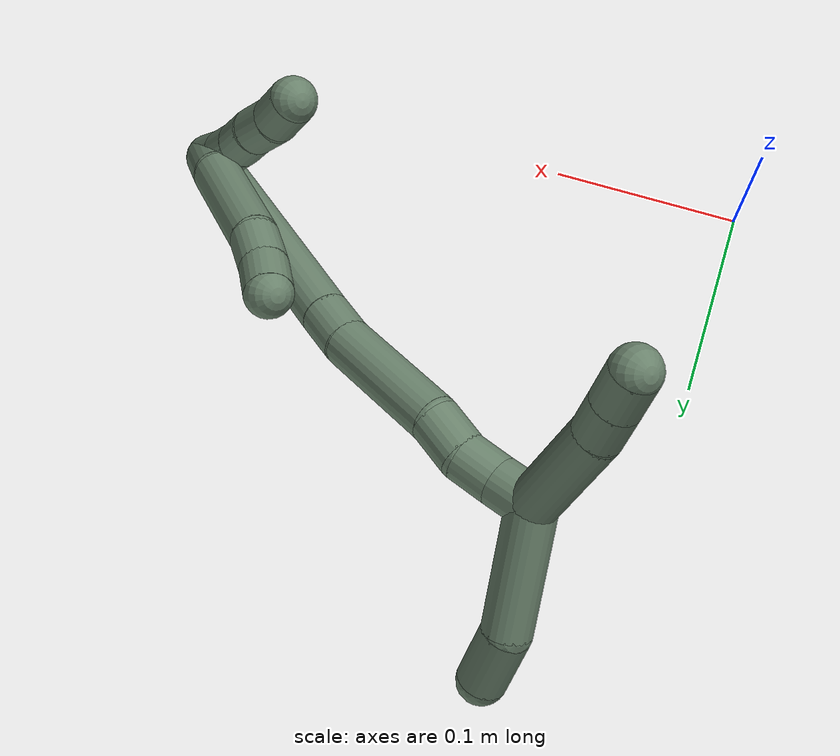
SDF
<sdf version="1.7">
 <world name="default">
  <model name="17">
   <static>0</static>
   <link name="17">
    <collision name="collision-cylinder-e_1_2_8">
     <pose>0.001035 0.005543 0.016873 -0.317396 0.058223 -0.009321</pose>
     <geometry><cylinder><radius>0.0125</radius><length>0.03558</length></cylinder></geometry>
     <surface>
      <friction><ode><mu>1.16</mu><mu2>1.16</mu2><slip1>0</slip1><slip2>0</slip2></ode></friction>
      <contact><ode><kp>1e+06</kp><kd>1</kd><max_vel>0</max_vel><min_depth>0.001</min_depth></ode></contact>
     </surface>
    </collision>
    <visual name="visual-cylinder-e_1_2_8">
     <pose>0.001035 0.005543 0.016873 -0.317396 0.058223 -0.009321</pose>
     <geometry><cylinder><radius>0.0125</radius><length>0.03558</length></cylinder></geometry>
     <material><ambient>0.415686 0.509804 0.423529 1</ambient></material>
    </visual>
    <collision name="collision-cylinder-e_2_8_9">
     <pose>-0.004529 0.023792 0.066197 -0.373195 -0.187163 0.035435</pose>
     <geometry><cylinder><radius>0.0125</radius><length>0.070939</length></cylinder></geometry>
     <surface>
      <friction><ode><mu>1.16</mu><mu2>1.16</mu2><slip1>0</slip1><slip2>0</slip2></ode></friction>
      <contact><ode><kp>1e+06</kp><kd>1</kd><max_vel>0</max_vel><min_depth>0.001</min_depth></ode></contact>
     </surface>
    </collision>
    <visual name="visual-cylinder-e_2_8_9">
     <pose>-0.004529 0.023792 0.066197 -0.373195 -0.187163 0.035435</pose>
     <geometry><cylinder><radius>0.0125</radius><length>0.070939</length></cylinder></geometry>
     <material><ambient>0.415686 0.509804 0.423529 1</ambient></material>
    </visual>
    <collision name="collision-cylinder-e_3_9_10">
     <pose>-0.01416 0.042232 0.107741 -0.562617 -0.27481 0.079874</pose>
     <geometry><cylinder><radius>0.0125</radius><length>0.022338</length></cylinder></geometry>
     <surface>
      <friction><ode><mu>1.16</mu><mu2>1.16</mu2><slip1>0</slip1><slip2>0</slip2></ode></friction>
      <contact><ode><kp>1e+06</kp><kd>1</kd><max_vel>0</max_vel><min_depth>0.001</min_depth></ode></contact>
     </surface>
    </collision>
    <visual name="visual-cylinder-e_3_9_10">
     <pose>-0.01416 0.042232 0.107741 -0.562617 -0.27481 0.079874</pose>
     <geometry><cylinder><radius>0.0125</radius><length>0.022338</length></cylinder></geometry>
     <material><ambient>0.415686 0.509804 0.423529 1</ambient></material>
    </visual>
    <collision name="collision-cylinder-e_4_10_6">
     <pose>-0.018844 0.053798 0.125494 -0.592727 -0.156963 0.048019</pose>
     <geometry><cylinder><radius>0.0125</radius><length>0.021143</length></cylinder></geometry>
     <surface>
      <friction><ode><mu>1.16</mu><mu2>1.16</mu2><slip1>0</slip1><slip2>0</slip2></ode></friction>
      <contact><ode><kp>1e+06</kp><kd>1</kd><max_vel>0</max_vel><min_depth>0.001</min_depth></ode></contact>
     </surface>
    </collision>
    <visual name="visual-cylinder-e_4_10_6">
     <pose>-0.018844 0.053798 0.125494 -0.592727 -0.156963 0.048019</pose>
     <geometry><cylinder><radius>0.0125</radius><length>0.021143</length></cylinder></geometry>
     <material><ambient>0.415686 0.509804 0.423529 1</ambient></material>
    </visual>
    <collision name="collision-cylinder-e_1_2_11">
     <pose>0.000541 -0.001731 0.009834 0.174241 0.054091 0.004726</pose>
     <geometry><cylinder><radius>0.0125</radius><length>0.02</length></cylinder></geometry>
     <surface>
      <friction><ode><mu>1.16</mu><mu2>1.16</mu2><slip1>0</slip1><slip2>0</slip2></ode></friction>
      <contact><ode><kp>1e+06</kp><kd>1</kd><max_vel>0</max_vel><min_depth>0.001</min_depth></ode></contact>
     </surface>
    </collision>
    <visual name="visual-cylinder-e_1_2_11">
     <pose>0.000541 -0.001731 0.009834 0.174241 0.054091 0.004726</pose>
     <geometry><cylinder><radius>0.0125</radius><length>0.02</length></cylinder></geometry>
     <material><ambient>0.415686 0.509804 0.423529 1</ambient></material>
    </visual>
    <collision name="collision-cylinder-e_2_11_12">
     <pose>0.002402 -0.005815 0.029298 0.239626 0.132428 0.015966</pose>
     <geometry><cylinder><radius>0.0125</radius><length>0.02</length></cylinder></geometry>
     <surface>
      <friction><ode><mu>1.16</mu><mu2>1.16</mu2><slip1>0</slip1><slip2>0</slip2></ode></friction>
      <contact><ode><kp>1e+06</kp><kd>1</kd><max_vel>0</max_vel><min_depth>0.001</min_depth></ode></contact>
     </surface>
    </collision>
    <visual name="visual-cylinder-e_2_11_12">
     <pose>0.002402 -0.005815 0.029298 0.239626 0.132428 0.015966</pose>
     <geometry><cylinder><radius>0.0125</radius><length>0.02</length></cylinder></geometry>
     <material><ambient>0.415686 0.509804 0.423529 1</ambient></material>
    </visual>
    <collision name="collision-cylinder-e_3_12_13">
     <pose>0.005778 -0.010998 0.048295 0.293441 0.207089 0.030712</pose>
     <geometry><cylinder><radius>0.0125</radius><length>0.02</length></cylinder></geometry>
     <surface>
      <friction><ode><mu>1.16</mu><mu2>1.16</mu2><slip1>0</slip1><slip2>0</slip2></ode></friction>
      <contact><ode><kp>1e+06</kp><kd>1</kd><max_vel>0</max_vel><min_depth>0.001</min_depth></ode></contact>
     </surface>
    </collision>
    <visual name="visual-cylinder-e_3_12_13">
     <pose>0.005778 -0.010998 0.048295 0.293441 0.207089 0.030712</pose>
     <geometry><cylinder><radius>0.0125</radius><length>0.02</length></cylinder></geometry>
     <material><ambient>0.415686 0.509804 0.423529 1</ambient></material>
    </visual>
    <collision name="collision-cylinder-e_4_13_14">
     <pose>0.008497 -0.017306 0.067015 0.356015 0.066322 0.011936</pose>
     <geometry><cylinder><radius>0.0125</radius><length>0.02</length></cylinder></geometry>
     <surface>
      <friction><ode><mu>1.16</mu><mu2>1.16</mu2><slip1>0</slip1><slip2>0</slip2></ode></friction>
      <contact><ode><kp>1e+06</kp><kd>1</kd><max_vel>0</max_vel><min_depth>0.001</min_depth></ode></contact>
     </surface>
    </collision>
    <visual name="visual-cylinder-e_4_13_14">
     <pose>0.008497 -0.017306 0.067015 0.356015 0.066322 0.011936</pose>
     <geometry><cylinder><radius>0.0125</radius><length>0.02</length></cylinder></geometry>
     <material><ambient>0.415686 0.509804 0.423529 1</ambient></material>
    </visual>
    <collision name="collision-cylinder-e_5_14_5">
     <pose>0.011391 -0.025188 0.085064 0.468735 0.224974 0.053928</pose>
     <geometry><cylinder><radius>0.0125</radius><length>0.02</length></cylinder></geometry>
     <surface>
      <friction><ode><mu>1.16</mu><mu2>1.16</mu2><slip1>0</slip1><slip2>0</slip2></ode></friction>
      <contact><ode><kp>1e+06</kp><kd>1</kd><max_vel>0</max_vel><min_depth>0.001</min_depth></ode></contact>
     </surface>
    </collision>
    <visual name="visual-cylinder-e_5_14_5">
     <pose>0.011391 -0.025188 0.085064 0.468735 0.224974 0.053928</pose>
     <geometry><cylinder><radius>0.0125</radius><length>0.02</length></cylinder></geometry>
     <material><ambient>0.415686 0.509804 0.423529 1</ambient></material>
    </visual>
    <collision name="collision-cylinder-e_1_2_15">
     <pose>-0.027639 0.023863 0.062129 -0.366714 -0.39361 0.073915</pose>
     <geometry><cylinder><radius>0.0125</radius><length>0.14413</length></cylinder></geometry>
     <surface>
      <friction><ode><mu>1.16</mu><mu2>1.16</mu2><slip1>0</slip1><slip2>0</slip2></ode></friction>
      <contact><ode><kp>1e+06</kp><kd>1</kd><max_vel>0</max_vel><min_depth>0.001</min_depth></ode></contact>
     </surface>
    </collision>
    <visual name="visual-cylinder-e_1_2_15">
     <pose>-0.027639 0.023863 0.062129 -0.366714 -0.39361 0.073915</pose>
     <geometry><cylinder><radius>0.0125</radius><length>0.14413</length></cylinder></geometry>
     <material><ambient>0.415686 0.509804 0.423529 1</ambient></material>
    </visual>
    <collision name="collision-cylinder-e_2_15_16">
     <pose>-0.059961 0.051286 0.133932 -0.352579 -0.426494 0.07711</pose>
     <geometry><cylinder><radius>0.0125</radius><length>0.022643</length></cylinder></geometry>
     <surface>
      <friction><ode><mu>1.16</mu><mu2>1.16</mu2><slip1>0</slip1><slip2>0</slip2></ode></friction>
      <contact><ode><kp>1e+06</kp><kd>1</kd><max_vel>0</max_vel><min_depth>0.001</min_depth></ode></contact>
     </surface>
    </collision>
    <visual name="visual-cylinder-e_2_15_16">
     <pose>-0.059961 0.051286 0.133932 -0.352579 -0.426494 0.07711</pose>
     <geometry><cylinder><radius>0.0125</radius><length>0.022643</length></cylinder></geometry>
     <material><ambient>0.415686 0.509804 0.423529 1</ambient></material>
    </visual>
    <collision name="collision-cylinder-e_3_16_17">
     <pose>-0.080252 0.060999 0.173574 -0.202544 -0.47172 0.048835</pose>
     <geometry><cylinder><radius>0.0125</radius><length>0.06869</length></cylinder></geometry>
     <surface>
      <friction><ode><mu>1.16</mu><mu2>1.16</mu2><slip1>0</slip1><slip2>0</slip2></ode></friction>
      <contact><ode><kp>1e+06</kp><kd>1</kd><max_vel>0</max_vel><min_depth>0.001</min_depth></ode></contact>
     </surface>
    </collision>
    <visual name="visual-cylinder-e_3_16_17">
     <pose>-0.080252 0.060999 0.173574 -0.202544 -0.47172 0.048835</pose>
     <geometry><cylinder><radius>0.0125</radius><length>0.06869</length></cylinder></geometry>
     <material><ambient>0.415686 0.509804 0.423529 1</ambient></material>
    </visual>
    <collision name="collision-cylinder-e_4_17_18">
     <pose>-0.103023 0.07085 0.211927 -0.415185 -0.663573 0.144877</pose>
     <geometry><cylinder><radius>0.0125</radius><length>0.023263</length></cylinder></geometry>
     <surface>
      <friction><ode><mu>1.16</mu><mu2>1.16</mu2><slip1>0</slip1><slip2>0</slip2></ode></friction>
      <contact><ode><kp>1e+06</kp><kd>1</kd><max_vel>0</max_vel><min_depth>0.001</min_depth></ode></contact>
     </surface>
    </collision>
    <visual name="visual-cylinder-e_4_17_18">
     <pose>-0.103023 0.07085 0.211927 -0.415185 -0.663573 0.144877</pose>
     <geometry><cylinder><radius>0.0125</radius><length>0.023263</length></cylinder></geometry>
     <material><ambient>0.415686 0.509804 0.423529 1</ambient></material>
    </visual>
    <collision name="collision-cylinder-e_5_18_19">
     <pose>-0.117402 0.075135 0.227728 -0.079237 -0.770107 0.032128</pose>
     <geometry><cylinder><radius>0.0125</radius><length>0.020727</length></cylinder></geometry>
     <surface>
      <friction><ode><mu>1.16</mu><mu2>1.16</mu2><slip1>0</slip1><slip2>0</slip2></ode></friction>
      <contact><ode><kp>1e+06</kp><kd>1</kd><max_vel>0</max_vel><min_depth>0.001</min_depth></ode></contact>
     </surface>
    </collision>
    <visual name="visual-cylinder-e_5_18_19">
     <pose>-0.117402 0.075135 0.227728 -0.079237 -0.770107 0.032128</pose>
     <geometry><cylinder><radius>0.0125</radius><length>0.020727</length></cylinder></geometry>
     <material><ambient>0.415686 0.509804 0.423529 1</ambient></material>
    </visual>
    <collision name="collision-cylinder-e_6_19_1">
     <pose>-0.130045 0.076307 0.243847 -0.066929 -0.556586 0.019129</pose>
     <geometry><cylinder><radius>0.0125</radius><length>0.020546</length></cylinder></geometry>
     <surface>
      <friction><ode><mu>1.16</mu><mu2>1.16</mu2><slip1>0</slip1><slip2>0</slip2></ode></friction>
      <contact><ode><kp>1e+06</kp><kd>1</kd><max_vel>0</max_vel><min_depth>0.001</min_depth></ode></contact>
     </surface>
    </collision>
    <visual name="visual-cylinder-e_6_19_1">
     <pose>-0.130045 0.076307 0.243847 -0.066929 -0.556586 0.019129</pose>
     <geometry><cylinder><radius>0.0125</radius><length>0.020546</length></cylinder></geometry>
     <material><ambient>0.415686 0.509804 0.423529 1</ambient></material>
    </visual>
    <collision name="collision-cylinder-e_1_1_20">
     <pose>-0.154782 0.102229 0.243862 -1.90112 -0.624592 0.849057</pose>
     <geometry><cylinder><radius>0.0125</radius><length>0.066041</length></cylinder></geometry>
     <surface>
      <friction><ode><mu>1.16</mu><mu2>1.16</mu2><slip1>0</slip1><slip2>0</slip2></ode></friction>
      <contact><ode><kp>1e+06</kp><kd>1</kd><max_vel>0</max_vel><min_depth>0.001</min_depth></ode></contact>
     </surface>
    </collision>
    <visual name="visual-cylinder-e_1_1_20">
     <pose>-0.154782 0.102229 0.243862 -1.90112 -0.624592 0.849057</pose>
     <geometry><cylinder><radius>0.0125</radius><length>0.066041</length></cylinder></geometry>
     <material><ambient>0.415686 0.509804 0.423529 1</ambient></material>
    </visual>
    <collision name="collision-cylinder-e_2_20_4">
     <pose>-0.182149 0.139014 0.225565 -2.26911 -0.494515 0.992514</pose>
     <geometry><cylinder><radius>0.0125</radius><length>0.033959</length></cylinder></geometry>
     <surface>
      <friction><ode><mu>1.16</mu><mu2>1.16</mu2><slip1>0</slip1><slip2>0</slip2></ode></friction>
      <contact><ode><kp>1e+06</kp><kd>1</kd><max_vel>0</max_vel><min_depth>0.001</min_depth></ode></contact>
     </surface>
    </collision>
    <visual name="visual-cylinder-e_2_20_4">
     <pose>-0.182149 0.139014 0.225565 -2.26911 -0.494515 0.992514</pose>
     <geometry><cylinder><radius>0.0125</radius><length>0.033959</length></cylinder></geometry>
     <material><ambient>0.415686 0.509804 0.423529 1</ambient></material>
    </visual>
    <collision name="collision-cylinder-e_1_1_21">
     <pose>-0.125285 0.060155 0.274313 0.655547 0.355308 0.121955</pose>
     <geometry><cylinder><radius>0.0125</radius><length>0.058565</length></cylinder></geometry>
     <surface>
      <friction><ode><mu>1.16</mu><mu2>1.16</mu2><slip1>0</slip1><slip2>0</slip2></ode></friction>
      <contact><ode><kp>1e+06</kp><kd>1</kd><max_vel>0</max_vel><min_depth>0.001</min_depth></ode></contact>
     </surface>
    </collision>
    <visual name="visual-cylinder-e_1_1_21">
     <pose>-0.125285 0.060155 0.274313 0.655547 0.355308 0.121955</pose>
     <geometry><cylinder><radius>0.0125</radius><length>0.058565</length></cylinder></geometry>
     <material><ambient>0.415686 0.509804 0.423529 1</ambient></material>
    </visual>
    <collision name="collision-cylinder-e_2_21_22">
     <pose>-0.110399 0.037495 0.3028 0.72224 0.482948 0.185497</pose>
     <geometry><cylinder><radius>0.0125</radius><length>0.020239</length></cylinder></geometry>
     <surface>
      <friction><ode><mu>1.16</mu><mu2>1.16</mu2><slip1>0</slip1><slip2>0</slip2></ode></friction>
      <contact><ode><kp>1e+06</kp><kd>1</kd><max_vel>0</max_vel><min_depth>0.001</min_depth></ode></contact>
     </surface>
    </collision>
    <visual name="visual-cylinder-e_2_21_22">
     <pose>-0.110399 0.037495 0.3028 0.72224 0.482948 0.185497</pose>
     <geometry><cylinder><radius>0.0125</radius><length>0.020239</length></cylinder></geometry>
     <material><ambient>0.415686 0.509804 0.423529 1</ambient></material>
    </visual>
    <collision name="collision-cylinder-e_3_22_3">
     <pose>-0.100685 0.025497 0.316616 0.708222 0.492931 0.185482</pose>
     <geometry><cylinder><radius>0.0125</radius><length>0.021196</length></cylinder></geometry>
     <surface>
      <friction><ode><mu>1.16</mu><mu2>1.16</mu2><slip1>0</slip1><slip2>0</slip2></ode></friction>
      <contact><ode><kp>1e+06</kp><kd>1</kd><max_vel>0</max_vel><min_depth>0.001</min_depth></ode></contact>
     </surface>
    </collision>
    <visual name="visual-cylinder-e_3_22_3">
     <pose>-0.100685 0.025497 0.316616 0.708222 0.492931 0.185482</pose>
     <geometry><cylinder><radius>0.0125</radius><length>0.021196</length></cylinder></geometry>
     <material><ambient>0.415686 0.509804 0.423529 1</ambient></material>
    </visual>
    <collision name="collision-sphere-3">
     <pose>-0.09567 0.019424 0.323707 0 -0 0</pose>
     <geometry><sphere><radius>0.0125</radius></sphere></geometry>
     <surface>
      <friction><ode><mu>1.16</mu><mu2>1.16</mu2><slip1>0</slip1><slip2>0</slip2></ode></friction>
      <contact><ode><kp>1e+06</kp><kd>1</kd><max_vel>0</max_vel><min_depth>0.001</min_depth></ode></contact>
     </surface>
    </collision>
    <visual name="visual-sphere-3">
     <pose>-0.09567 0.019424 0.323707 0 -0 0</pose>
     <geometry><sphere><radius>0.0125</radius></sphere></geometry>
     <material><ambient>0.415686 0.509804 0.423529 1</ambient></material>
    </visual>
    <collision name="collision-sphere-22">
     <pose>-0.1057 0.03157 0.309525 0 -0 0</pose>
     <geometry><sphere><radius>0.0125</radius></sphere></geometry>
     <surface>
      <friction><ode><mu>1.16</mu><mu2>1.16</mu2><slip1>0</slip1><slip2>0</slip2></ode></friction>
      <contact><ode><kp>1e+06</kp><kd>1</kd><max_vel>0</max_vel><min_depth>0.001</min_depth></ode></contact>
     </surface>
    </collision>
    <visual name="visual-sphere-22">
     <pose>-0.1057 0.03157 0.309525 0 -0 0</pose>
     <geometry><sphere><radius>0.0125</radius></sphere></geometry>
     <material><ambient>0.415686 0.509804 0.423529 1</ambient></material>
    </visual>
    <collision name="collision-sphere-21">
     <pose>-0.115099 0.043419 0.296076 0 -0 0</pose>
     <geometry><sphere><radius>0.0125</radius></sphere></geometry>
     <surface>
      <friction><ode><mu>1.16</mu><mu2>1.16</mu2><slip1>0</slip1><slip2>0</slip2></ode></friction>
      <contact><ode><kp>1e+06</kp><kd>1</kd><max_vel>0</max_vel><min_depth>0.001</min_depth></ode></contact>
     </surface>
    </collision>
    <visual name="visual-sphere-21">
     <pose>-0.115099 0.043419 0.296076 0 -0 0</pose>
     <geometry><sphere><radius>0.0125</radius></sphere></geometry>
     <material><ambient>0.415686 0.509804 0.423529 1</ambient></material>
    </visual>
    <collision name="collision-sphere-4">
     <pose>-0.190208 0.150461 0.215957 0 -0 0</pose>
     <geometry><sphere><radius>0.0125</radius></sphere></geometry>
     <surface>
      <friction><ode><mu>1.16</mu><mu2>1.16</mu2><slip1>0</slip1><slip2>0</slip2></ode></friction>
      <contact><ode><kp>1e+06</kp><kd>1</kd><max_vel>0</max_vel><min_depth>0.001</min_depth></ode></contact>
     </surface>
    </collision>
    <visual name="visual-sphere-4">
     <pose>-0.190208 0.150461 0.215957 0 -0 0</pose>
     <geometry><sphere><radius>0.0125</radius></sphere></geometry>
     <material><ambient>0.415686 0.509804 0.423529 1</ambient></material>
    </visual>
    <collision name="collision-sphere-20">
     <pose>-0.174091 0.127567 0.235174 0 -0 0</pose>
     <geometry><sphere><radius>0.0125</radius></sphere></geometry>
     <surface>
      <friction><ode><mu>1.16</mu><mu2>1.16</mu2><slip1>0</slip1><slip2>0</slip2></ode></friction>
      <contact><ode><kp>1e+06</kp><kd>1</kd><max_vel>0</max_vel><min_depth>0.001</min_depth></ode></contact>
     </surface>
    </collision>
    <visual name="visual-sphere-20">
     <pose>-0.174091 0.127567 0.235174 0 -0 0</pose>
     <geometry><sphere><radius>0.0125</radius></sphere></geometry>
     <material><ambient>0.415686 0.509804 0.423529 1</ambient></material>
    </visual>
    <collision name="collision-sphere-11">
     <pose>0.001081 -0.003462 0.019668 0 -0 0</pose>
     <geometry><sphere><radius>0.0125</radius></sphere></geometry>
     <surface>
      <friction><ode><mu>1.16</mu><mu2>1.16</mu2><slip1>0</slip1><slip2>0</slip2></ode></friction>
      <contact><ode><kp>1e+06</kp><kd>1</kd><max_vel>0</max_vel><min_depth>0.001</min_depth></ode></contact>
     </surface>
    </collision>
    <visual name="visual-sphere-11">
     <pose>0.001081 -0.003462 0.019668 0 -0 0</pose>
     <geometry><sphere><radius>0.0125</radius></sphere></geometry>
     <material><ambient>0.415686 0.509804 0.423529 1</ambient></material>
    </visual>
    <collision name="collision-sphere-6">
     <pose>-0.020496 0.059631 0.134155 0 -0 0</pose>
     <geometry><sphere><radius>0.0125</radius></sphere></geometry>
     <surface>
      <friction><ode><mu>1.16</mu><mu2>1.16</mu2><slip1>0</slip1><slip2>0</slip2></ode></friction>
      <contact><ode><kp>1e+06</kp><kd>1</kd><max_vel>0</max_vel><min_depth>0.001</min_depth></ode></contact>
     </surface>
    </collision>
    <visual name="visual-sphere-6">
     <pose>-0.020496 0.059631 0.134155 0 -0 0</pose>
     <geometry><sphere><radius>0.0125</radius></sphere></geometry>
     <material><ambient>0.415686 0.509804 0.423529 1</ambient></material>
    </visual>
    <collision name="collision-sphere-10">
     <pose>-0.017191 0.047966 0.116834 0 -0 0</pose>
     <geometry><sphere><radius>0.0125</radius></sphere></geometry>
     <surface>
      <friction><ode><mu>1.16</mu><mu2>1.16</mu2><slip1>0</slip1><slip2>0</slip2></ode></friction>
      <contact><ode><kp>1e+06</kp><kd>1</kd><max_vel>0</max_vel><min_depth>0.001</min_depth></ode></contact>
     </surface>
    </collision>
    <visual name="visual-sphere-10">
     <pose>-0.017191 0.047966 0.116834 0 -0 0</pose>
     <geometry><sphere><radius>0.0125</radius></sphere></geometry>
     <material><ambient>0.415686 0.509804 0.423529 1</ambient></material>
    </visual>
    <collision name="collision-sphere-9">
     <pose>-0.011129 0.036498 0.098648 0 -0 0</pose>
     <geometry><sphere><radius>0.0125</radius></sphere></geometry>
     <surface>
      <friction><ode><mu>1.16</mu><mu2>1.16</mu2><slip1>0</slip1><slip2>0</slip2></ode></friction>
      <contact><ode><kp>1e+06</kp><kd>1</kd><max_vel>0</max_vel><min_depth>0.001</min_depth></ode></contact>
     </surface>
    </collision>
    <visual name="visual-sphere-9">
     <pose>-0.011129 0.036498 0.098648 0 -0 0</pose>
     <geometry><sphere><radius>0.0125</radius></sphere></geometry>
     <material><ambient>0.415686 0.509804 0.423529 1</ambient></material>
    </visual>
    <collision name="collision-sphere-2">
     <geometry><sphere><radius>0.0125</radius></sphere></geometry>
     <surface>
      <friction><ode><mu>1.16</mu><mu2>1.16</mu2><slip1>0</slip1><slip2>0</slip2></ode></friction>
      <contact><ode><kp>1e+06</kp><kd>1</kd><max_vel>0</max_vel><min_depth>0.001</min_depth></ode></contact>
     </surface>
    </collision>
    <visual name="visual-sphere-2">
     <geometry><sphere><radius>0.0125</radius></sphere></geometry>
     <material><ambient>0.415686 0.509804 0.423529 1</ambient></material>
    </visual>
    <collision name="collision-sphere-19">
     <pose>-0.124618 0.075723 0.235144 0 -0 0</pose>
     <geometry><sphere><radius>0.0125</radius></sphere></geometry>
     <surface>
      <friction><ode><mu>1.16</mu><mu2>1.16</mu2><slip1>0</slip1><slip2>0</slip2></ode></friction>
      <contact><ode><kp>1e+06</kp><kd>1</kd><max_vel>0</max_vel><min_depth>0.001</min_depth></ode></contact>
     </surface>
    </collision>
    <visual name="visual-sphere-19">
     <pose>-0.124618 0.075723 0.235144 0 -0 0</pose>
     <geometry><sphere><radius>0.0125</radius></sphere></geometry>
     <material><ambient>0.415686 0.509804 0.423529 1</ambient></material>
    </visual>
    <collision name="collision-sphere-8">
     <pose>0.00207 0.011086 0.033746 0 -0 0</pose>
     <geometry><sphere><radius>0.0125</radius></sphere></geometry>
     <surface>
      <friction><ode><mu>1.16</mu><mu2>1.16</mu2><slip1>0</slip1><slip2>0</slip2></ode></friction>
      <contact><ode><kp>1e+06</kp><kd>1</kd><max_vel>0</max_vel><min_depth>0.001</min_depth></ode></contact>
     </surface>
    </collision>
    <visual name="visual-sphere-8">
     <pose>0.00207 0.011086 0.033746 0 -0 0</pose>
     <geometry><sphere><radius>0.0125</radius></sphere></geometry>
     <material><ambient>0.415686 0.509804 0.423529 1</ambient></material>
    </visual>
    <collision name="collision-sphere-12">
     <pose>0.003722 -0.008167 0.038927 0 -0 0</pose>
     <geometry><sphere><radius>0.0125</radius></sphere></geometry>
     <surface>
      <friction><ode><mu>1.16</mu><mu2>1.16</mu2><slip1>0</slip1><slip2>0</slip2></ode></friction>
      <contact><ode><kp>1e+06</kp><kd>1</kd><max_vel>0</max_vel><min_depth>0.001</min_depth></ode></contact>
     </surface>
    </collision>
    <visual name="visual-sphere-12">
     <pose>0.003722 -0.008167 0.038927 0 -0 0</pose>
     <geometry><sphere><radius>0.0125</radius></sphere></geometry>
     <material><ambient>0.415686 0.509804 0.423529 1</ambient></material>
    </visual>
    <collision name="collision-sphere-13">
     <pose>0.007834 -0.013829 0.057663 0 -0 0</pose>
     <geometry><sphere><radius>0.0125</radius></sphere></geometry>
     <surface>
      <friction><ode><mu>1.16</mu><mu2>1.16</mu2><slip1>0</slip1><slip2>0</slip2></ode></friction>
      <contact><ode><kp>1e+06</kp><kd>1</kd><max_vel>0</max_vel><min_depth>0.001</min_depth></ode></contact>
     </surface>
    </collision>
    <visual name="visual-sphere-13">
     <pose>0.007834 -0.013829 0.057663 0 -0 0</pose>
     <geometry><sphere><radius>0.0125</radius></sphere></geometry>
     <material><ambient>0.415686 0.509804 0.423529 1</ambient></material>
    </visual>
    <collision name="collision-sphere-14">
     <pose>0.00916 -0.020784 0.076367 0 -0 0</pose>
     <geometry><sphere><radius>0.0125</radius></sphere></geometry>
     <surface>
      <friction><ode><mu>1.16</mu><mu2>1.16</mu2><slip1>0</slip1><slip2>0</slip2></ode></friction>
      <contact><ode><kp>1e+06</kp><kd>1</kd><max_vel>0</max_vel><min_depth>0.001</min_depth></ode></contact>
     </surface>
    </collision>
    <visual name="visual-sphere-14">
     <pose>0.00916 -0.020784 0.076367 0 -0 0</pose>
     <geometry><sphere><radius>0.0125</radius></sphere></geometry>
     <material><ambient>0.415686 0.509804 0.423529 1</ambient></material>
    </visual>
    <collision name="collision-sphere-5">
     <pose>0.013621 -0.029592 0.093761 0 -0 0</pose>
     <geometry><sphere><radius>0.0125</radius></sphere></geometry>
     <surface>
      <friction><ode><mu>1.16</mu><mu2>1.16</mu2><slip1>0</slip1><slip2>0</slip2></ode></friction>
      <contact><ode><kp>1e+06</kp><kd>1</kd><max_vel>0</max_vel><min_depth>0.001</min_depth></ode></contact>
     </surface>
    </collision>
    <visual name="visual-sphere-5">
     <pose>0.013621 -0.029592 0.093761 0 -0 0</pose>
     <geometry><sphere><radius>0.0125</radius></sphere></geometry>
     <material><ambient>0.415686 0.509804 0.423529 1</ambient></material>
    </visual>
    <collision name="collision-sphere-15">
     <pose>-0.055278 0.047726 0.124259 0 -0 0</pose>
     <geometry><sphere><radius>0.0125</radius></sphere></geometry>
     <surface>
      <friction><ode><mu>1.16</mu><mu2>1.16</mu2><slip1>0</slip1><slip2>0</slip2></ode></friction>
      <contact><ode><kp>1e+06</kp><kd>1</kd><max_vel>0</max_vel><min_depth>0.001</min_depth></ode></contact>
     </surface>
    </collision>
    <visual name="visual-sphere-15">
     <pose>-0.055278 0.047726 0.124259 0 -0 0</pose>
     <geometry><sphere><radius>0.0125</radius></sphere></geometry>
     <material><ambient>0.415686 0.509804 0.423529 1</ambient></material>
    </visual>
    <collision name="collision-sphere-16">
     <pose>-0.064645 0.054845 0.143605 0 -0 0</pose>
     <geometry><sphere><radius>0.0125</radius></sphere></geometry>
     <surface>
      <friction><ode><mu>1.16</mu><mu2>1.16</mu2><slip1>0</slip1><slip2>0</slip2></ode></friction>
      <contact><ode><kp>1e+06</kp><kd>1</kd><max_vel>0</max_vel><min_depth>0.001</min_depth></ode></contact>
     </surface>
    </collision>
    <visual name="visual-sphere-16">
     <pose>-0.064645 0.054845 0.143605 0 -0 0</pose>
     <geometry><sphere><radius>0.0125</radius></sphere></geometry>
     <material><ambient>0.415686 0.509804 0.423529 1</ambient></material>
    </visual>
    <collision name="collision-sphere-17">
     <pose>-0.095859 0.067154 0.203542 0 -0 0</pose>
     <geometry><sphere><radius>0.0125</radius></sphere></geometry>
     <surface>
      <friction><ode><mu>1.16</mu><mu2>1.16</mu2><slip1>0</slip1><slip2>0</slip2></ode></friction>
      <contact><ode><kp>1e+06</kp><kd>1</kd><max_vel>0</max_vel><min_depth>0.001</min_depth></ode></contact>
     </surface>
    </collision>
    <visual name="visual-sphere-17">
     <pose>-0.095859 0.067154 0.203542 0 -0 0</pose>
     <geometry><sphere><radius>0.0125</radius></sphere></geometry>
     <material><ambient>0.415686 0.509804 0.423529 1</ambient></material>
    </visual>
    <collision name="collision-sphere-18">
     <pose>-0.110187 0.074546 0.220312 0 -0 0</pose>
     <geometry><sphere><radius>0.0125</radius></sphere></geometry>
     <surface>
      <friction><ode><mu>1.16</mu><mu2>1.16</mu2><slip1>0</slip1><slip2>0</slip2></ode></friction>
      <contact><ode><kp>1e+06</kp><kd>1</kd><max_vel>0</max_vel><min_depth>0.001</min_depth></ode></contact>
     </surface>
    </collision>
    <visual name="visual-sphere-18">
     <pose>-0.110187 0.074546 0.220312 0 -0 0</pose>
     <geometry><sphere><radius>0.0125</radius></sphere></geometry>
     <material><ambient>0.415686 0.509804 0.423529 1</ambient></material>
    </visual>
    <collision name="collision-sphere-1">
     <pose>-0.135472 0.07689 0.25255 0 -0 0</pose>
     <geometry><sphere><radius>0.0125</radius></sphere></geometry>
     <surface>
      <friction><ode><mu>1.16</mu><mu2>1.16</mu2><slip1>0</slip1><slip2>0</slip2></ode></friction>
      <contact><ode><kp>1e+06</kp><kd>1</kd><max_vel>0</max_vel><min_depth>0.001</min_depth></ode></contact>
     </surface>
    </collision>
    <visual name="visual-sphere-1">
     <pose>-0.135472 0.07689 0.25255 0 -0 0</pose>
     <geometry><sphere><radius>0.0125</radius></sphere></geometry>
     <material><ambient>0.415686 0.509804 0.423529 1</ambient></material>
    </visual>
    <inertial>
     <pose>-0.062528 0.043471 0.141848 0 -0 0</pose>
     <mass>0.75</mass>
     <inertia>
      <ixx>0.000382</ixx>
      <ixy>0</ixy>
      <ixz>0</ixz>
      <iyy>0.000396</iyy>
      <iyz>0</iyz>
      <izz>5.6e-05</izz>
     </inertia>
    </inertial>
   </link>
   <pose>0.281851 0.05544 0.033045 -0.029881 -0.620435 -0.306091</pose>
  </model>
 </world>
</sdf>
